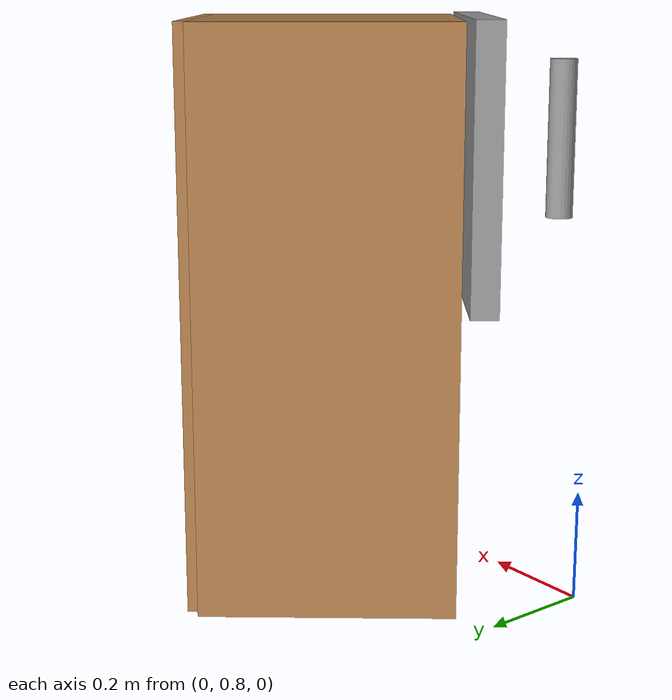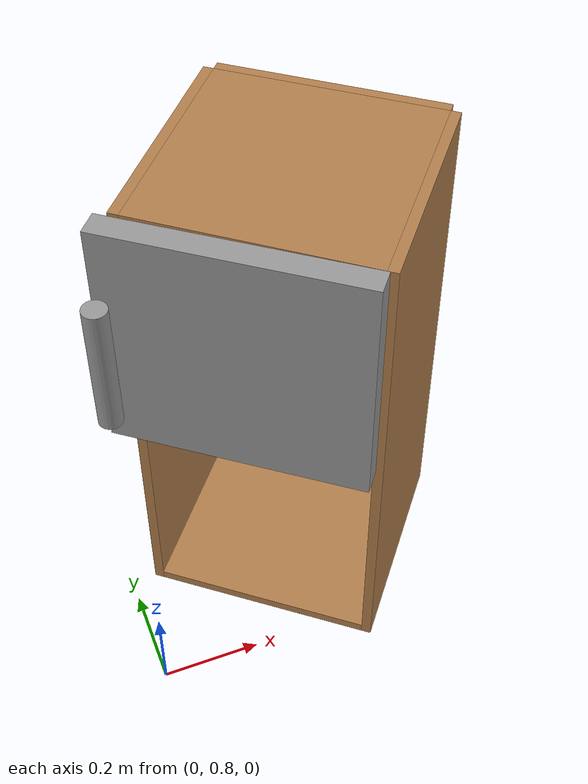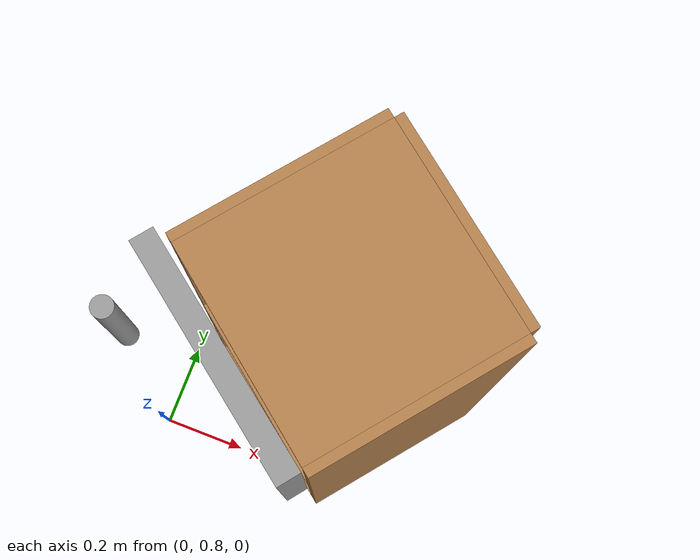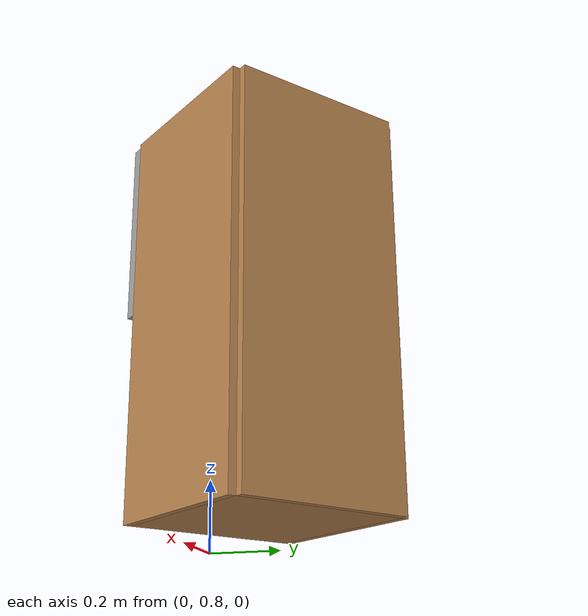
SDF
<?xml version='1.0'?>
<sdf version='1.7'>
  <model name='Cabinet'>
    <link name='link_1'>
      <inertial>
        <mass>0.0117628</mass>
        <inertia>
          <ixx>0.00047208</ixx>
          <ixy>0</ixy>
          <ixz>0</ixz>
          <iyy>0.00023378</iyy>
          <iyz>0</iyz>
          <izz>0.00024289</izz>
        </inertia>
        <pose>0 0 0 0 -0 0</pose>
      </inertial>
      <pose>0.209026 0.87224 0.789345 0 -0 0.910773</pose>
      <self_collide>0</self_collide>
      <enable_wind>0</enable_wind>
      <kinematic>0</kinematic>
      <gravity>1</gravity>
      <visual name='visual'>
        <pose>0 0 0 0 -0 0</pose>
        <geometry>
          <box>
            <size>0.048406 0.495426 0.485956</size>
          </box>
        </geometry>
        <material>
          <lighting>1</lighting>
          <script>
            <uri>file://media/materials/scripts/gazebo.material</uri>
            <name>Gazebo/Grey</name>
          </script>
          <shader type='pixel'>
            <normal_map>__default__</normal_map>
          </shader>
          <emissive>0 0 0 1</emissive>
        </material>
        <transparency>0</transparency>
        <cast_shadows>1</cast_shadows>
      </visual>
      <collision name='collision'>
        <laser_retro>0</laser_retro>
        <max_contacts>10</max_contacts>
        <pose>0 0 0 0 -0 0</pose>
        <geometry>
          <box>
            <size>0.048406 0.495426 0.485956</size>
          </box>
        </geometry>
        <surface>
          <friction>
            <ode>
              <mu>1</mu>
              <mu2>1</mu2>
              <fdir1>0 0 0</fdir1>
              <slip1>0</slip1>
              <slip2>0</slip2>
            </ode>
            <torsional>
              <coefficient>1</coefficient>
              <patch_radius>0</patch_radius>
              <surface_radius>0</surface_radius>
              <use_patch_radius>1</use_patch_radius>
              <ode>
                <slip>0</slip>
              </ode>
            </torsional>
          </friction>
          <bounce>
            <restitution_coefficient>0</restitution_coefficient>
            <threshold>1e+06</threshold>
          </bounce>
          <contact>
            <collide_without_contact>0</collide_without_contact>
            <collide_without_contact_bitmask>1</collide_without_contact_bitmask>
            <collide_bitmask>1</collide_bitmask>
            <ode>
              <soft_cfm>0</soft_cfm>
              <soft_erp>0.2</soft_erp>
              <kp>1e+13</kp>
              <kd>1</kd>
              <max_vel>0.01</max_vel>
              <min_depth>0</min_depth>
            </ode>
            <bullet>
              <split_impulse>1</split_impulse>
              <split_impulse_penetration_threshold>-0.01</split_impulse_penetration_threshold>
              <soft_cfm>0</soft_cfm>
              <soft_erp>0.2</soft_erp>
              <kp>1e+13</kp>
              <kd>1</kd>
            </bullet>
          </contact>
        </surface>
      </collision>
    </link>
    <link name='link_2'>
      <inertial>
        <mass>0.000520077</mass>
        <inertia>
          <ixx>2.98392e-06</ixx>
          <ixy>0</ixy>
          <ixz>0</ixz>
          <iyy>2.98392e-06</iyy>
          <iyz>0</iyz>
          <izz>1.30256e-07</izz>
        </inertia>
        <pose>0 0 0 0 -0 0</pose>
      </inertial>
      <pose>-0.01681 0.88983 0.839102 0 -0 0.860373</pose>
      <self_collide>0</self_collide>
      <enable_wind>0</enable_wind>
      <kinematic>0</kinematic>
      <visual name='visual'>
        <pose>0 0 0 0 -0 0</pose>
        <geometry>
          <cylinder>
            <radius>0.022381</radius>
            <length>0.259512</length>
          </cylinder>
        </geometry>
        <material>
          <lighting>1</lighting>
          <script>
            <uri>file://media/materials/scripts/gazebo.material</uri>
            <name>Gazebo/Grey</name>
          </script>
          <shader type='pixel'/>
          <emissive>0 0 0 1</emissive>
        </material>
        <transparency>0</transparency>
        <cast_shadows>1</cast_shadows>
      </visual>
      <collision name='collision'>
        <laser_retro>0</laser_retro>
        <max_contacts>10</max_contacts>
        <pose>0 0 0 0 -0 0</pose>
        <geometry>
          <cylinder>
            <radius>0.022381</radius>
            <length>0.259512</length>
          </cylinder>
        </geometry>
        <surface>
          <friction>
            <ode>
              <mu>1</mu>
              <mu2>1</mu2>
              <fdir1>0 0 0</fdir1>
              <slip1>0</slip1>
              <slip2>0</slip2>
            </ode>
            <torsional>
              <coefficient>1</coefficient>
              <patch_radius>0</patch_radius>
              <surface_radius>0</surface_radius>
              <use_patch_radius>1</use_patch_radius>
              <ode>
                <slip>0</slip>
              </ode>
            </torsional>
          </friction>
          <bounce>
            <restitution_coefficient>0</restitution_coefficient>
            <threshold>1e+06</threshold>
          </bounce>
          <contact>
            <collide_without_contact>0</collide_without_contact>
            <collide_without_contact_bitmask>1</collide_without_contact_bitmask>
            <collide_bitmask>1</collide_bitmask>
            <ode>
              <soft_cfm>0</soft_cfm>
              <soft_erp>0.2</soft_erp>
              <kp>1e+13</kp>
              <kd>1</kd>
              <max_vel>0.01</max_vel>
              <min_depth>0</min_depth>
            </ode>
            <bullet>
              <split_impulse>1</split_impulse>
              <split_impulse_penetration_threshold>-0.01</split_impulse_penetration_threshold>
              <soft_cfm>0</soft_cfm>
              <soft_erp>0.2</soft_erp>
              <kp>1e+13</kp>
              <kd>1</kd>
            </bullet>
          </contact>
        </surface>
      </collision>
    </link>
    <model name='cabinet'>
      <static>1</static>
      <link name='cabinet_bottom_plate'>
        <inertial>
          <pose>0 0 -1 0 -0 0</pose>
          <inertia>
            <ixx>2.05</ixx>
            <ixy>0</ixy>
            <ixz>0</ixz>
            <iyy>2.05</iyy>
            <iyz>0</iyz>
            <izz>2.05</izz>
          </inertia>
          <mass>25</mass>
        </inertial>
        <collision name='cabinet_bottom_plate_geom'>
          <pose>0 0 0.01 0 -0 0</pose>
          <geometry>
            <box>
              <size>0.45 0.45 0.02</size>
            </box>
          </geometry>
          <max_contacts>10</max_contacts>
          <surface>
            <contact>
              <ode/>
            </contact>
            <bounce/>
            <friction>
              <torsional>
                <ode/>
              </torsional>
              <ode/>
            </friction>
          </surface>
        </collision>
        <visual name='cabinet_bottom_plate_geom_visual'>
          <pose>0 0 0.01 0 -0 0</pose>
          <geometry>
            <box>
              <size>0.45 0.45 0.02</size>
            </box>
          </geometry>
          <material>
            <script>
              <uri>file://media/materials/scripts/gazebo.material</uri>
              <name>Gazebo/Wood</name>
            </script>
          </material>
        </visual>
        <collision name='cabinet_bottom_plate_geom_cabinet_back_plate'>
          <pose>0.235 0 0.51 0 -0 0</pose>
          <geometry>
            <box>
              <size>0.02 0.45 1.02</size>
            </box>
          </geometry>
          <max_contacts>10</max_contacts>
          <surface>
            <contact>
              <ode/>
            </contact>
            <bounce/>
            <friction>
              <torsional>
                <ode/>
              </torsional>
              <ode/>
            </friction>
          </surface>
        </collision>
        <visual name='cabinet_bottom_plate_geom_cabinet_back_plate_visual'>
          <pose>0.235 0 0.51 0 -0 0</pose>
          <geometry>
            <box>
              <size>0.02 0.45 1.02</size>
            </box>
          </geometry>
          <material>
            <script>
              <uri>file://media/materials/scripts/gazebo.material</uri>
              <name>Gazebo/Wood</name>
            </script>
          </material>
        </visual>
        <collision name='cabinet_bottom_plate_geom_cabinet_left_plate'>
          <pose>0 0.235 0.51 0 -0 0</pose>
          <geometry>
            <box>
              <size>0.45 0.02 1.02</size>
            </box>
          </geometry>
          <max_contacts>10</max_contacts>
          <surface>
            <contact>
              <ode/>
            </contact>
            <bounce/>
            <friction>
              <torsional>
                <ode/>
              </torsional>
              <ode/>
            </friction>
          </surface>
        </collision>
        <visual name='cabinet_bottom_plate_geom_cabinet_left_plate_visual'>
          <pose>0 0.235 0.51 0 -0 0</pose>
          <geometry>
            <box>
              <size>0.45 0.02 1.02</size>
            </box>
          </geometry>
          <material>
            <script>
              <uri>file://media/materials/scripts/gazebo.material</uri>
              <name>Gazebo/Wood</name>
            </script>
          </material>
        </visual>
        <collision name='cabinet_bottom_plate_geom_cabinet_middle_plate'>
          <pose>0 0 0.51 0 -0 0</pose>
          <geometry>
            <box>
              <size>0.45 0.45 0.02</size>
            </box>
          </geometry>
          <max_contacts>10</max_contacts>
          <surface>
            <contact>
              <ode/>
            </contact>
            <bounce/>
            <friction>
              <torsional>
                <ode/>
              </torsional>
              <ode/>
            </friction>
          </surface>
        </collision>
        <visual name='cabinet_bottom_plate_geom_cabinet_middle_plate_visual'>
          <pose>0 0 0.51 0 -0 0</pose>
          <geometry>
            <box>
              <size>0.45 0.45 0.02</size>
            </box>
          </geometry>
          <material>
            <script>
              <uri>file://media/materials/scripts/gazebo.material</uri>
              <name>Gazebo/Wood</name>
            </script>
          </material>
        </visual>
        <collision name='cabinet_bottom_plate_geom_cabinet_right_plate'>
          <pose>0 -0.235 0.51 0 -0 0</pose>
          <geometry>
            <box>
              <size>0.45 0.02 1.02</size>
            </box>
          </geometry>
          <max_contacts>10</max_contacts>
          <surface>
            <contact>
              <ode/>
            </contact>
            <bounce/>
            <friction>
              <torsional>
                <ode/>
              </torsional>
              <ode/>
            </friction>
          </surface>
        </collision>
        <visual name='cabinet_bottom_plate_geom_cabinet_right_plate_visual'>
          <pose>0 -0.235 0.51 0 -0 0</pose>
          <geometry>
            <box>
              <size>0.45 0.02 1.02</size>
            </box>
          </geometry>
          <material>
            <script>
              <uri>file://media/materials/scripts/gazebo.material</uri>
              <name>Gazebo/Wood</name>
            </script>
          </material>
        </visual>
        <collision name='cabinet_bottom_plate_geom_cabinet_top_plate'>
          <pose>0 0 1.01 0 -0 0</pose>
          <geometry>
            <box>
              <size>0.45 0.45 0.02</size>
            </box>
          </geometry>
          <max_contacts>10</max_contacts>
          <surface>
            <contact>
              <ode/>
            </contact>
            <bounce/>
            <friction>
              <torsional>
                <ode/>
              </torsional>
              <ode/>
            </friction>
          </surface>
        </collision>
        <visual name='cabinet_bottom_plate_geom_cabinet_top_plate_visual'>
          <pose>0 0 1.01 0 -0 0</pose>
          <geometry>
            <box>
              <size>0.45 0.45 0.02</size>
            </box>
          </geometry>
          <material>
            <script>
              <uri>file://media/materials/scripts/gazebo.material</uri>
              <name>Gazebo/Wood</name>
            </script>
          </material>
        </visual>
        <self_collide>0</self_collide>
        <enable_wind>0</enable_wind>
        <kinematic>0</kinematic>
      </link>
      <pose>0.382943 1.06367 0.008098 0 -0 0.89481</pose>
    </model>
    <joint name='Handle_link' type='fixed'>
      <parent>link_1</parent>
      <child>link_2</child>
      <pose>0 0 0 0 -0 0</pose>
      <physics>
        <ode>
          <limit>
            <cfm>0</cfm>
            <erp>0.2</erp>
          </limit>
          <suspension>
            <cfm>0</cfm>
            <erp>0.2</erp>
          </suspension>
        </ode>
      </physics>
    </joint>
    <joint name='cabinet_bottom_plate_JOINT_1' type='revolute'>
      <parent>cabinet::cabinet_bottom_plate</parent>
      <child>link_1</child>
      <pose>0 -0.29 0 0 -0 0</pose>
      <axis>
        <xyz>0 0 1</xyz>
        <limit>
          <lower>-1.79769e+308</lower>
          <upper>1.79769e+308</upper>
          <effort>-1</effort>
          <velocity>-1</velocity>
        </limit>
        <dynamics>
          <spring_reference>0</spring_reference>
          <spring_stiffness>0</spring_stiffness>
          <damping>0</damping>
          <friction>0</friction>
        </dynamics>
      </axis>
      <physics>
        <ode>
          <limit>
            <cfm>0</cfm>
            <erp>0.2</erp>
          </limit>
          <suspension>
            <cfm>0</cfm>
            <erp>0.2</erp>
          </suspension>
        </ode>
      </physics>
    </joint>
    <static>0</static>
    <allow_auto_disable>1</allow_auto_disable>
  </model>
</sdf>
